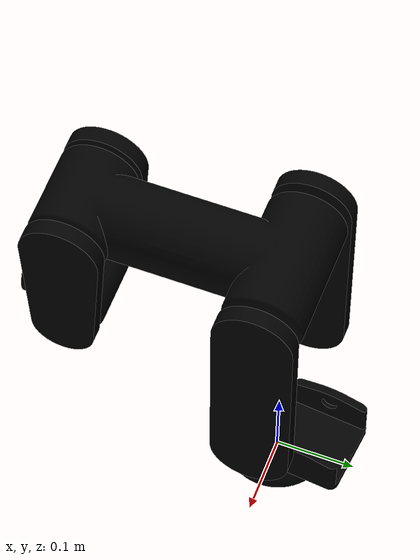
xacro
<?xml version="1.0" ?>
<robot name="Cobot" xmlns:xacro="http://www.ros.org/wiki/xacro">

<xacro:include filename="$(find cobot_description)/urdf/materials.xacro" />
<xacro:include filename="$(find cobot_description)/urdf/cobot.trans" />
<xacro:include filename="$(find cobot_description)/urdf/cobot.gazebo" />
<link name= "world"/>
<link name="base_link">
  <inertial>
    <origin xyz="-1.2972850039755492e-17 0.0 0.03670442150572817" rpy="0 0 0"/>
    <mass value="5.503442487223917"/>
    <inertia ixx="0.007142" iyy="0.007142" izz="0.007951" ixy="-0.0" iyz="-0.0" ixz="-0.0"/>
  </inertial>
  <visual>
    <origin xyz="0 0 0" rpy="0 0 0"/>
    <geometry>
      <mesh filename="package://cobot_description/meshes/base_link.stl" scale="0.001 0.001 0.001"/>
    </geometry>
    <material name="silver"/>
  </visual>
  <collision>
    <origin xyz="0 0 0" rpy="0 0 0"/>
    <geometry>
      <mesh filename="package://cobot_description/meshes/base_link.stl" scale="0.001 0.001 0.001"/>
    </geometry>
  </collision>
</link>

<link name="base_joint_1">
  <inertial>
    <origin xyz="-5.95929710844456e-10 5.996805720800185e-09 0.06166062192697862" rpy="0 0 0"/>
    <mass value="10.611591187770788"/>
    <inertia ixx="0.014633" iyy="0.028949" izz="0.0282" ixy="0.0" iyz="0.0" ixz="-0.0"/>
  </inertial>
  <visual>
    <origin xyz="-0.0 -0.0 -0.08" rpy="0 0 0"/>
    <geometry>
      <mesh filename="package://cobot_description/meshes/base_joint_1.stl" scale="0.001 0.001 0.001"/>
    </geometry>
    <material name="silver"/>
  </visual>
  <collision>
    <origin xyz="-0.0 -0.0 -0.08" rpy="0 0 0"/>
    <geometry>
      <mesh filename="package://cobot_description/meshes/base_joint_1.stl" scale="0.001 0.001 0.001"/>
    </geometry>
  </collision>
</link>

<link name="Shoulder_1">
  <inertial>
    <origin xyz="-0.08000000000000002 -6.6011772650993885e-18 0.1193073921952982" rpy="0 0 0"/>
    <mass value="10.815545655264254"/>
    <inertia ixx="0.103047" iyy="0.199811" izz="0.112944" ixy="0.0" iyz="-0.0" ixz="-0.0"/>
  </inertial>
  <visual>
    <origin xyz="-0.08 -0.0 -0.15" rpy="0 0 0"/>
    <geometry>
      <mesh filename="package://cobot_description/meshes/Shoulder_1.stl" scale="0.001 0.001 0.001"/>
    </geometry>
    <material name="silver"/>
  </visual>
  <collision>
    <origin xyz="-0.08 -0.0 -0.15" rpy="0 0 0"/>
    <geometry>
      <mesh filename="package://cobot_description/meshes/Shoulder_1.stl" scale="0.001 0.001 0.001"/>
    </geometry>
  </collision>
</link>

<link name="elbow_joint_1">
  <inertial>
    <origin xyz="-0.08997963492715857 -0.11061140786869318 -0.004921535193373183" rpy="0 0 0"/>
    <mass value="26.774299686619884"/>
    <inertia ixx="0.30536" iyy="0.051149" izz="0.321794" ixy="8e-06" iyz="3.2e-05" ixz="-0.0"/>
  </inertial>
  <visual>
    <origin xyz="-0.09 -0.0 -0.4" rpy="0 0 0"/>
    <geometry>
      <mesh filename="package://cobot_description/meshes/elbow_joint_1.stl" scale="0.001 0.001 0.001"/>
    </geometry>
    <material name="silver"/>
  </visual>
  <collision>
    <origin xyz="-0.09 -0.0 -0.4" rpy="0 0 0"/>
    <geometry>
      <mesh filename="package://cobot_description/meshes/elbow_joint_1.stl" scale="0.001 0.001 0.001"/>
    </geometry>
  </collision>
</link>

<link name="wrist1_1">
  <inertial>
    <origin xyz="0.055000000000000014 0.0 -0.07187789128386346" rpy="0 0 0"/>
    <mass value="6.5613388718047485"/>
    <inertia ixx="0.029992" iyy="0.057258" izz="0.035263" ixy="-0.0" iyz="0.0" ixz="0.0"/>
  </inertial>
  <visual>
    <origin xyz="0.055 0.25 -0.4" rpy="0 0 0"/>
    <geometry>
      <mesh filename="package://cobot_description/meshes/wrist1_1.stl" scale="0.001 0.001 0.001"/>
    </geometry>
    <material name="silver"/>
  </visual>
  <collision>
    <origin xyz="0.055 0.25 -0.4" rpy="0 0 0"/>
    <geometry>
      <mesh filename="package://cobot_description/meshes/wrist1_1.stl" scale="0.001 0.001 0.001"/>
    </geometry>
  </collision>
</link>

<link name="wrist2_1">
  <inertial>
    <origin xyz="-0.0600072785371625 -0.010924894509253713 -0.004877997934775419" rpy="0 0 0"/>
    <mass value="5.063124340718995"/>
    <inertia ixx="0.005913" iyy="0.005825" izz="0.007459" ixy="-1e-06" iyz="1.8e-05" ixz="0.0"/>
  </inertial>
  <visual>
    <origin xyz="-0.06 0.25 -0.25" rpy="0 0 0"/>
    <geometry>
      <mesh filename="package://cobot_description/meshes/wrist2_1.stl" scale="0.001 0.001 0.001"/>
    </geometry>
    <material name="silver"/>
  </visual>
  <collision>
    <origin xyz="-0.06 0.25 -0.25" rpy="0 0 0"/>
    <geometry>
      <mesh filename="package://cobot_description/meshes/wrist2_1.stl" scale="0.001 0.001 0.001"/>
    </geometry>
  </collision>
</link>

<joint name="fixed" type="fixed">
  <parent link="world"/>
  <child link="base_link"/>
</joint>

<joint name="BJ" type="continuous">
  <origin xyz="0.0 0.0 0.08" rpy="0 0 0"/>
  <parent link="base_link"/>
  <child link="base_joint_1"/>
  <axis xyz="0.0 0.0 1.0"/>
</joint>

<joint name="SJ" type="continuous">
  <origin xyz="0.08 0.0 0.07" rpy="0 0 0"/>
  <parent link="base_joint_1"/>
  <child link="Shoulder_1"/>
  <axis xyz="1.0 0.0 0.0"/>
</joint>

<joint name="EJ" type="continuous">
  <origin xyz="0.01 0.0 0.25" rpy="0 0 0"/>
  <parent link="Shoulder_1"/>
  <child link="elbow_joint_1"/>
  <axis xyz="1.0 0.0 0.0"/>
</joint>

<joint name="W1J" type="continuous">
  <origin xyz="-0.145 -0.25 0.0" rpy="0 0 0"/>
  <parent link="elbow_joint_1"/>
  <child link="wrist1_1"/>
  <axis xyz="1.0 0.0 0.0"/>
</joint>

<joint name="W2J" type="continuous">
  <origin xyz="0.115 0.0 -0.15" rpy="0 0 0"/>
  <parent link="wrist1_1"/>
  <child link="wrist2_1"/>
  <axis xyz="1.0 0.0 0.0"/>
</joint>

</robot>

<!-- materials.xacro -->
<robot name="Flipkart" xmlns:xacro="http://www.ros.org/wiki/xacro" >

<material name="silver">
  <color rgba="0 0 0 1.000"/>
</material>

</robot>
